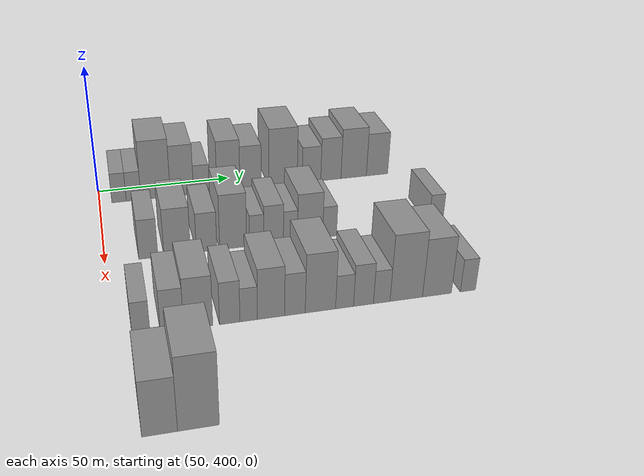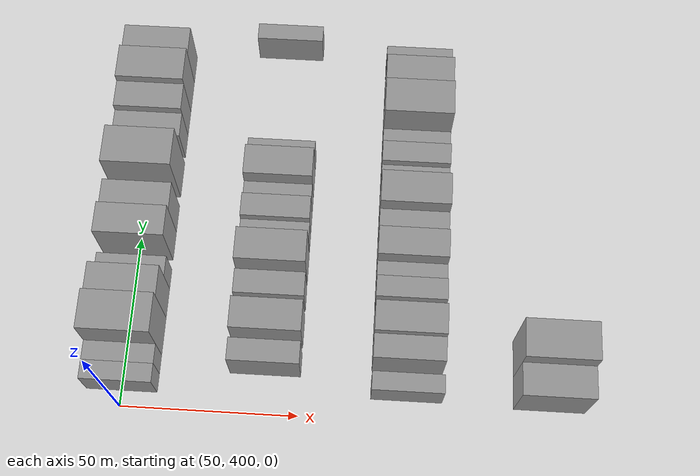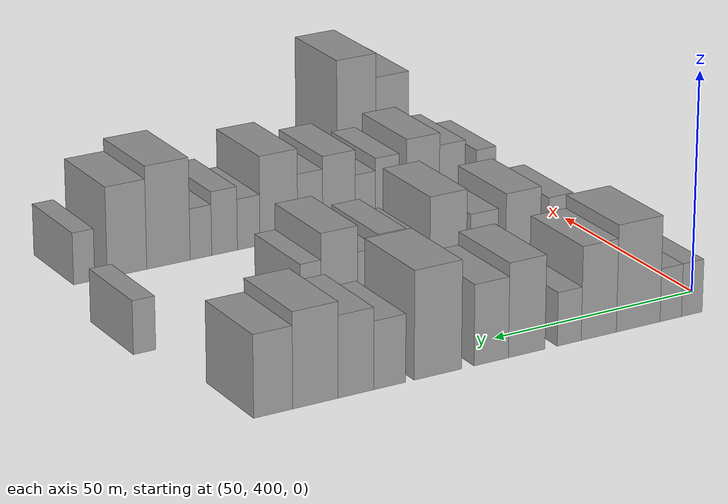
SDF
<sdf version="1.6">
 <world name="default">
  <model name="building_114">
   <static>1</static>
   <pose>50.0000 407.1340 0 0.000000 0.000000 0.000000</pose>
   <link name="link">
    <pose>0 0 6.00 0 0 0</pose>
    <collision name="collision"><geometry><box><size>20.0000 5.2944 12.0000</size></box></geometry></collision>
    <visual name="visual">
     <cast_shadows>0</cast_shadows>
     <geometry><box><size>20.0000 5.2944 12.0000</size></box></geometry>
     <material>
      <script>
       <uri>model://grey_wall/materials/scripts</uri>
       <uri>model://grey_wall/materials/textures</uri>
       <name>vrc/grey_wall</name>
      </script>
     </material>
    </visual>
   </link>
  </model>
  <model name="building_115">
   <static>1</static>
   <pose>50.0000 412.5193 0 0.000000 0.000000 0.000000</pose>
   <link name="link">
    <pose>0 0 6.00 0 0 0</pose>
    <collision name="collision"><geometry><box><size>20.0000 5.4762 12.0000</size></box></geometry></collision>
    <visual name="visual">
     <cast_shadows>0</cast_shadows>
     <geometry><box><size>20.0000 5.4762 12.0000</size></box></geometry>
     <material>
      <script>
       <uri>model://grey_wall/materials/scripts</uri>
       <uri>model://grey_wall/materials/textures</uri>
       <name>vrc/grey_wall</name>
      </script>
     </material>
    </visual>
   </link>
  </model>
  <model name="building_116">
   <static>1</static>
   <pose>50.0000 420.7711 0 0.000000 0.000000 0.000000</pose>
   <link name="link">
    <pose>0 0 12.00 0 0 0</pose>
    <collision name="collision"><geometry><box><size>20.0000 11.0274 24.0000</size></box></geometry></collision>
    <visual name="visual">
     <cast_shadows>0</cast_shadows>
     <geometry><box><size>20.0000 11.0274 24.0000</size></box></geometry>
     <material>
      <script>
       <uri>model://grey_wall/materials/scripts</uri>
       <uri>model://grey_wall/materials/textures</uri>
       <name>vrc/grey_wall</name>
      </script>
     </material>
    </visual>
   </link>
  </model>
  <model name="building_117">
   <static>1</static>
   <pose>50.0000 430.6638 0 0.000000 0.000000 0.000000</pose>
   <link name="link">
    <pose>0 0 10.50 0 0 0</pose>
    <collision name="collision"><geometry><box><size>20.0000 8.7579 21.0000</size></box></geometry></collision>
    <visual name="visual">
     <cast_shadows>0</cast_shadows>
     <geometry><box><size>20.0000 8.7579 21.0000</size></box></geometry>
     <material>
      <script>
       <uri>model://grey_wall/materials/scripts</uri>
       <uri>model://grey_wall/materials/textures</uri>
       <name>vrc/grey_wall</name>
      </script>
     </material>
    </visual>
   </link>
  </model>
  <model name="building_118">
   <static>1</static>
   <pose>50.0000 438.0082 0 0.000000 0.000000 0.000000</pose>
   <link name="link">
    <pose>0 0 6.00 0 0 0</pose>
    <collision name="collision"><geometry><box><size>20.0000 5.9310 12.0000</size></box></geometry></collision>
    <visual name="visual">
     <cast_shadows>0</cast_shadows>
     <geometry><box><size>20.0000 5.9310 12.0000</size></box></geometry>
     <material>
      <script>
       <uri>model://grey_wall/materials/scripts</uri>
       <uri>model://grey_wall/materials/textures</uri>
       <name>vrc/grey_wall</name>
      </script>
     </material>
    </visual>
   </link>
  </model>
  <model name="building_119">
   <static>1</static>
   <pose>50.0000 448.4330 0 0.000000 0.000000 0.000000</pose>
   <link name="link">
    <pose>0 0 10.50 0 0 0</pose>
    <collision name="collision"><geometry><box><size>20.0000 8.9185 21.0000</size></box></geometry></collision>
    <visual name="visual">
     <cast_shadows>0</cast_shadows>
     <geometry><box><size>20.0000 8.9185 21.0000</size></box></geometry>
     <material>
      <script>
       <uri>model://grey_wall/materials/scripts</uri>
       <uri>model://grey_wall/materials/textures</uri>
       <name>vrc/grey_wall</name>
      </script>
     </material>
    </visual>
   </link>
  </model>
  <model name="building_120">
   <static>1</static>
   <pose>50.0000 457.0442 0 0.000000 0.000000 0.000000</pose>
   <link name="link">
    <pose>0 0 9.00 0 0 0</pose>
    <collision name="collision"><geometry><box><size>20.0000 8.3039 18.0000</size></box></geometry></collision>
    <visual name="visual">
     <cast_shadows>0</cast_shadows>
     <geometry><box><size>20.0000 8.3039 18.0000</size></box></geometry>
     <material>
      <script>
       <uri>model://grey_wall/materials/scripts</uri>
       <uri>model://grey_wall/materials/textures</uri>
       <name>vrc/grey_wall</name>
      </script>
     </material>
    </visual>
   </link>
  </model>
  <model name="building_121">
   <static>1</static>
   <pose>50.0000 469.8124 0 0.000000 0.000000 0.000000</pose>
   <link name="link">
    <pose>0 0 12.00 0 0 0</pose>
    <collision name="collision"><geometry><box><size>20.0000 11.2325 24.0000</size></box></geometry></collision>
    <visual name="visual">
     <cast_shadows>0</cast_shadows>
     <geometry><box><size>20.0000 11.2325 24.0000</size></box></geometry>
     <material>
      <script>
       <uri>model://grey_wall/materials/scripts</uri>
       <uri>model://grey_wall/materials/textures</uri>
       <name>vrc/grey_wall</name>
      </script>
     </material>
    </visual>
   </link>
  </model>
  <model name="building_122">
   <static>1</static>
   <pose>50.0000 481.1685 0 0.000000 0.000000 0.000000</pose>
   <link name="link">
    <pose>0 0 7.50 0 0 0</pose>
    <collision name="collision"><geometry><box><size>20.0000 7.4798 15.0000</size></box></geometry></collision>
    <visual name="visual">
     <cast_shadows>0</cast_shadows>
     <geometry><box><size>20.0000 7.4798 15.0000</size></box></geometry>
     <material>
      <script>
       <uri>model://grey_wall/materials/scripts</uri>
       <uri>model://grey_wall/materials/textures</uri>
       <name>vrc/grey_wall</name>
      </script>
     </material>
    </visual>
   </link>
  </model>
  <model name="building_123">
   <static>1</static>
   <pose>50.0000 489.0172 0 0.000000 0.000000 0.000000</pose>
   <link name="link">
    <pose>0 0 9.00 0 0 0</pose>
    <collision name="collision"><geometry><box><size>20.0000 8.2176 18.0000</size></box></geometry></collision>
    <visual name="visual">
     <cast_shadows>0</cast_shadows>
     <geometry><box><size>20.0000 8.2176 18.0000</size></box></geometry>
     <material>
      <script>
       <uri>model://grey_wall/materials/scripts</uri>
       <uri>model://grey_wall/materials/textures</uri>
       <name>vrc/grey_wall</name>
      </script>
     </material>
    </visual>
   </link>
  </model>
  <model name="building_124">
   <static>1</static>
   <pose>50.0000 498.3271 0 0.000000 0.000000 0.000000</pose>
   <link name="link">
    <pose>0 0 10.50 0 0 0</pose>
    <collision name="collision"><geometry><box><size>20.0000 10.4022 21.0000</size></box></geometry></collision>
    <visual name="visual">
     <cast_shadows>0</cast_shadows>
     <geometry><box><size>20.0000 10.4022 21.0000</size></box></geometry>
     <material>
      <script>
       <uri>model://grey_wall/materials/scripts</uri>
       <uri>model://grey_wall/materials/textures</uri>
       <name>vrc/grey_wall</name>
      </script>
     </material>
    </visual>
   </link>
  </model>
  <model name="building_125">
   <static>1</static>
   <pose>50.0000 507.9501 0 0.000000 0.000000 0.000000</pose>
   <link name="link">
    <pose>0 0 9.00 0 0 0</pose>
    <collision name="collision"><geometry><box><size>20.0000 8.8437 18.0000</size></box></geometry></collision>
    <visual name="visual">
     <cast_shadows>0</cast_shadows>
     <geometry><box><size>20.0000 8.8437 18.0000</size></box></geometry>
     <material>
      <script>
       <uri>model://grey_wall/materials/scripts</uri>
       <uri>model://grey_wall/materials/textures</uri>
       <name>vrc/grey_wall</name>
      </script>
     </material>
    </visual>
   </link>
  </model>
  <model name="building_247">
   <static>1</static>
   <pose>90.0000 414.3589 0 0.000000 0.000000 0.000000</pose>
   <link name="link">
    <pose>0 0 7.50 0 0 0</pose>
    <collision name="collision"><geometry><box><size>20.0000 6.3774 15.0000</size></box></geometry></collision>
    <visual name="visual">
     <cast_shadows>0</cast_shadows>
     <geometry><box><size>20.0000 6.3774 15.0000</size></box></geometry>
     <material>
      <script>
       <uri>model://grey_wall/materials/scripts</uri>
       <uri>model://grey_wall/materials/textures</uri>
       <name>vrc/grey_wall</name>
      </script>
     </material>
    </visual>
   </link>
  </model>
  <model name="building_248">
   <static>1</static>
   <pose>90.0000 424.0070 0 0.000000 0.000000 0.000000</pose>
   <link name="link">
    <pose>0 0 9.00 0 0 0</pose>
    <collision name="collision"><geometry><box><size>20.0000 8.9189 18.0000</size></box></geometry></collision>
    <visual name="visual">
     <cast_shadows>0</cast_shadows>
     <geometry><box><size>20.0000 8.9189 18.0000</size></box></geometry>
     <material>
      <script>
       <uri>model://grey_wall/materials/scripts</uri>
       <uri>model://grey_wall/materials/textures</uri>
       <name>vrc/grey_wall</name>
      </script>
     </material>
    </visual>
   </link>
  </model>
  <model name="building_249">
   <static>1</static>
   <pose>90.0000 433.9471 0 0.000000 0.000000 0.000000</pose>
   <link name="link">
    <pose>0 0 7.50 0 0 0</pose>
    <collision name="collision"><geometry><box><size>20.0000 6.9612 15.0000</size></box></geometry></collision>
    <visual name="visual">
     <cast_shadows>0</cast_shadows>
     <geometry><box><size>20.0000 6.9612 15.0000</size></box></geometry>
     <material>
      <script>
       <uri>model://grey_wall/materials/scripts</uri>
       <uri>model://grey_wall/materials/textures</uri>
       <name>vrc/grey_wall</name>
      </script>
     </material>
    </visual>
   </link>
  </model>
  <model name="building_250">
   <static>1</static>
   <pose>90.0000 443.0434 0 0.000000 0.000000 0.000000</pose>
   <link name="link">
    <pose>0 0 10.50 0 0 0</pose>
    <collision name="collision"><geometry><box><size>20.0000 9.2316 21.0000</size></box></geometry></collision>
    <visual name="visual">
     <cast_shadows>0</cast_shadows>
     <geometry><box><size>20.0000 9.2316 21.0000</size></box></geometry>
     <material>
      <script>
       <uri>model://grey_wall/materials/scripts</uri>
       <uri>model://grey_wall/materials/textures</uri>
       <name>vrc/grey_wall</name>
      </script>
     </material>
    </visual>
   </link>
  </model>
  <model name="building_251">
   <static>1</static>
   <pose>90.0000 451.1419 0 0.000000 0.000000 0.000000</pose>
   <link name="link">
    <pose>0 0 6.00 0 0 0</pose>
    <collision name="collision"><geometry><box><size>20.0000 4.9653 12.0000</size></box></geometry></collision>
    <visual name="visual">
     <cast_shadows>0</cast_shadows>
     <geometry><box><size>20.0000 4.9653 12.0000</size></box></geometry>
     <material>
      <script>
       <uri>model://grey_wall/materials/scripts</uri>
       <uri>model://grey_wall/materials/textures</uri>
       <name>vrc/grey_wall</name>
      </script>
     </material>
    </visual>
   </link>
  </model>
  <model name="building_252">
   <static>1</static>
   <pose>90.0000 457.0753 0 0.000000 0.000000 0.000000</pose>
   <link name="link">
    <pose>0 0 7.50 0 0 0</pose>
    <collision name="collision"><geometry><box><size>20.0000 6.9015 15.0000</size></box></geometry></collision>
    <visual name="visual">
     <cast_shadows>0</cast_shadows>
     <geometry><box><size>20.0000 6.9015 15.0000</size></box></geometry>
     <material>
      <script>
       <uri>model://grey_wall/materials/scripts</uri>
       <uri>model://grey_wall/materials/textures</uri>
       <name>vrc/grey_wall</name>
      </script>
     </material>
    </visual>
   </link>
  </model>
  <model name="building_253">
   <static>1</static>
   <pose>90.0000 463.0140 0 0.000000 0.000000 0.000000</pose>
   <link name="link">
    <pose>0 0 6.00 0 0 0</pose>
    <collision name="collision"><geometry><box><size>20.0000 4.9760 12.0000</size></box></geometry></collision>
    <visual name="visual">
     <cast_shadows>0</cast_shadows>
     <geometry><box><size>20.0000 4.9760 12.0000</size></box></geometry>
     <material>
      <script>
       <uri>model://grey_wall/materials/scripts</uri>
       <uri>model://grey_wall/materials/textures</uri>
       <name>vrc/grey_wall</name>
      </script>
     </material>
    </visual>
   </link>
  </model>
  <model name="building_254">
   <static>1</static>
   <pose>90.0000 469.9981 0 0.000000 0.000000 0.000000</pose>
   <link name="link">
    <pose>0 0 9.00 0 0 0</pose>
    <collision name="collision"><geometry><box><size>20.0000 8.9920 18.0000</size></box></geometry></collision>
    <visual name="visual">
     <cast_shadows>0</cast_shadows>
     <geometry><box><size>20.0000 8.9920 18.0000</size></box></geometry>
     <material>
      <script>
       <uri>model://grey_wall/materials/scripts</uri>
       <uri>model://grey_wall/materials/textures</uri>
       <name>vrc/grey_wall</name>
      </script>
     </material>
    </visual>
   </link>
  </model>
  <model name="building_255">
   <static>1</static>
   <pose>90.0000 476.9876 0 0.000000 0.000000 0.000000</pose>
   <link name="link">
    <pose>0 0 6.00 0 0 0</pose>
    <collision name="collision"><geometry><box><size>20.0000 4.9871 12.0000</size></box></geometry></collision>
    <visual name="visual">
     <cast_shadows>0</cast_shadows>
     <geometry><box><size>20.0000 4.9871 12.0000</size></box></geometry>
     <material>
      <script>
       <uri>model://grey_wall/materials/scripts</uri>
       <uri>model://grey_wall/materials/textures</uri>
       <name>vrc/grey_wall</name>
      </script>
     </material>
    </visual>
   </link>
  </model>
  <model name="building_256">
   <static>1</static>
   <pose>90.0000 516.2342 0 0.000000 0.000000 0.000000</pose>
   <link name="link">
    <pose>0 0 6.00 0 0 0</pose>
    <collision name="collision"><geometry><box><size>20.0000 5.1687 12.0000</size></box></geometry></collision>
    <visual name="visual">
     <cast_shadows>0</cast_shadows>
     <geometry><box><size>20.0000 5.1687 12.0000</size></box></geometry>
     <material>
      <script>
       <uri>model://grey_wall/materials/scripts</uri>
       <uri>model://grey_wall/materials/textures</uri>
       <name>vrc/grey_wall</name>
      </script>
     </material>
    </visual>
   </link>
  </model>
  <model name="building_387">
   <static>1</static>
   <pose>130.0000 408.5924 0 0.000000 0.000000 0.000000</pose>
   <link name="link">
    <pose>0 0 6.00 0 0 0</pose>
    <collision name="collision"><geometry><box><size>20.0000 5.2448 12.0000</size></box></geometry></collision>
    <visual name="visual">
     <cast_shadows>0</cast_shadows>
     <geometry><box><size>20.0000 5.2448 12.0000</size></box></geometry>
     <material>
      <script>
       <uri>model://grey_wall/materials/scripts</uri>
       <uri>model://grey_wall/materials/textures</uri>
       <name>vrc/grey_wall</name>
      </script>
     </material>
    </visual>
   </link>
  </model>
  <model name="building_388">
   <static>1</static>
   <pose>130.0000 417.6272 0 0.000000 0.000000 0.000000</pose>
   <link name="link">
    <pose>0 0 7.50 0 0 0</pose>
    <collision name="collision"><geometry><box><size>20.0000 6.8248 15.0000</size></box></geometry></collision>
    <visual name="visual">
     <cast_shadows>0</cast_shadows>
     <geometry><box><size>20.0000 6.8248 15.0000</size></box></geometry>
     <material>
      <script>
       <uri>model://grey_wall/materials/scripts</uri>
       <uri>model://grey_wall/materials/textures</uri>
       <name>vrc/grey_wall</name>
      </script>
     </material>
    </visual>
   </link>
  </model>
  <model name="building_389">
   <static>1</static>
   <pose>130.0000 425.3626 0 0.000000 0.000000 0.000000</pose>
   <link name="link">
    <pose>0 0 9.00 0 0 0</pose>
    <collision name="collision"><geometry><box><size>20.0000 8.6460 18.0000</size></box></geometry></collision>
    <visual name="visual">
     <cast_shadows>0</cast_shadows>
     <geometry><box><size>20.0000 8.6460 18.0000</size></box></geometry>
     <material>
      <script>
       <uri>model://grey_wall/materials/scripts</uri>
       <uri>model://grey_wall/materials/textures</uri>
       <name>vrc/grey_wall</name>
      </script>
     </material>
    </visual>
   </link>
  </model>
  <model name="building_390">
   <static>1</static>
   <pose>130.0000 434.7614 0 0.000000 0.000000 0.000000</pose>
   <link name="link">
    <pose>0 0 7.50 0 0 0</pose>
    <collision name="collision"><geometry><box><size>20.0000 6.1516 15.0000</size></box></geometry></collision>
    <visual name="visual">
     <cast_shadows>0</cast_shadows>
     <geometry><box><size>20.0000 6.1516 15.0000</size></box></geometry>
     <material>
      <script>
       <uri>model://grey_wall/materials/scripts</uri>
       <uri>model://grey_wall/materials/textures</uri>
       <name>vrc/grey_wall</name>
      </script>
     </material>
    </visual>
   </link>
  </model>
  <model name="building_391">
   <static>1</static>
   <pose>130.0000 440.4829 0 0.000000 0.000000 0.000000</pose>
   <link name="link">
    <pose>0 0 6.00 0 0 0</pose>
    <collision name="collision"><geometry><box><size>20.0000 5.2915 12.0000</size></box></geometry></collision>
    <visual name="visual">
     <cast_shadows>0</cast_shadows>
     <geometry><box><size>20.0000 5.2915 12.0000</size></box></geometry>
     <material>
      <script>
       <uri>model://grey_wall/materials/scripts</uri>
       <uri>model://grey_wall/materials/textures</uri>
       <name>vrc/grey_wall</name>
      </script>
     </material>
    </visual>
   </link>
  </model>
  <model name="building_392">
   <static>1</static>
   <pose>130.0000 447.2966 0 0.000000 0.000000 0.000000</pose>
   <link name="link">
    <pose>0 0 9.00 0 0 0</pose>
    <collision name="collision"><geometry><box><size>20.0000 8.3359 18.0000</size></box></geometry></collision>
    <visual name="visual">
     <cast_shadows>0</cast_shadows>
     <geometry><box><size>20.0000 8.3359 18.0000</size></box></geometry>
     <material>
      <script>
       <uri>model://grey_wall/materials/scripts</uri>
       <uri>model://grey_wall/materials/textures</uri>
       <name>vrc/grey_wall</name>
      </script>
     </material>
    </visual>
   </link>
  </model>
  <model name="building_393">
   <static>1</static>
   <pose>130.0000 454.6683 0 0.000000 0.000000 0.000000</pose>
   <link name="link">
    <pose>0 0 7.50 0 0 0</pose>
    <collision name="collision"><geometry><box><size>20.0000 6.4075 15.0000</size></box></geometry></collision>
    <visual name="visual">
     <cast_shadows>0</cast_shadows>
     <geometry><box><size>20.0000 6.4075 15.0000</size></box></geometry>
     <material>
      <script>
       <uri>model://grey_wall/materials/scripts</uri>
       <uri>model://grey_wall/materials/textures</uri>
       <name>vrc/grey_wall</name>
      </script>
     </material>
    </visual>
   </link>
  </model>
  <model name="building_394">
   <static>1</static>
   <pose>130.0000 462.6368 0 0.000000 0.000000 0.000000</pose>
   <link name="link">
    <pose>0 0 10.50 0 0 0</pose>
    <collision name="collision"><geometry><box><size>20.0000 9.5294 21.0000</size></box></geometry></collision>
    <visual name="visual">
     <cast_shadows>0</cast_shadows>
     <geometry><box><size>20.0000 9.5294 21.0000</size></box></geometry>
     <material>
      <script>
       <uri>model://grey_wall/materials/scripts</uri>
       <uri>model://grey_wall/materials/textures</uri>
       <name>vrc/grey_wall</name>
      </script>
     </material>
    </visual>
   </link>
  </model>
  <model name="building_395">
   <static>1</static>
   <pose>130.0000 470.2453 0 0.000000 0.000000 0.000000</pose>
   <link name="link">
    <pose>0 0 6.00 0 0 0</pose>
    <collision name="collision"><geometry><box><size>20.0000 5.6877 12.0000</size></box></geometry></collision>
    <visual name="visual">
     <cast_shadows>0</cast_shadows>
     <geometry><box><size>20.0000 5.6877 12.0000</size></box></geometry>
     <material>
      <script>
       <uri>model://grey_wall/materials/scripts</uri>
       <uri>model://grey_wall/materials/textures</uri>
       <name>vrc/grey_wall</name>
      </script>
     </material>
    </visual>
   </link>
  </model>
  <model name="building_396">
   <static>1</static>
   <pose>130.0000 476.2890 0 0.000000 0.000000 0.000000</pose>
   <link name="link">
    <pose>0 0 7.50 0 0 0</pose>
    <collision name="collision"><geometry><box><size>20.0000 6.3997 15.0000</size></box></geometry></collision>
    <visual name="visual">
     <cast_shadows>0</cast_shadows>
     <geometry><box><size>20.0000 6.3997 15.0000</size></box></geometry>
     <material>
      <script>
       <uri>model://grey_wall/materials/scripts</uri>
       <uri>model://grey_wall/materials/textures</uri>
       <name>vrc/grey_wall</name>
      </script>
     </material>
    </visual>
   </link>
  </model>
  <model name="building_397">
   <static>1</static>
   <pose>130.0000 482.1592 0 0.000000 0.000000 0.000000</pose>
   <link name="link">
    <pose>0 0 6.00 0 0 0</pose>
    <collision name="collision"><geometry><box><size>20.0000 5.3406 12.0000</size></box></geometry></collision>
    <visual name="visual">
     <cast_shadows>0</cast_shadows>
     <geometry><box><size>20.0000 5.3406 12.0000</size></box></geometry>
     <material>
      <script>
       <uri>model://grey_wall/materials/scripts</uri>
       <uri>model://grey_wall/materials/textures</uri>
       <name>vrc/grey_wall</name>
      </script>
     </material>
    </visual>
   </link>
  </model>
  <model name="building_398">
   <static>1</static>
   <pose>130.0000 490.1432 0 0.000000 0.000000 0.000000</pose>
   <link name="link">
    <pose>0 0 12.00 0 0 0</pose>
    <collision name="collision"><geometry><box><size>20.0000 10.6273 24.0000</size></box></geometry></collision>
    <visual name="visual">
     <cast_shadows>0</cast_shadows>
     <geometry><box><size>20.0000 10.6273 24.0000</size></box></geometry>
     <material>
      <script>
       <uri>model://grey_wall/materials/scripts</uri>
       <uri>model://grey_wall/materials/textures</uri>
       <name>vrc/grey_wall</name>
      </script>
     </material>
    </visual>
   </link>
  </model>
  <model name="building_399">
   <static>1</static>
   <pose>130.0000 500.2467 0 0.000000 0.000000 0.000000</pose>
   <link name="link">
    <pose>0 0 10.50 0 0 0</pose>
    <collision name="collision"><geometry><box><size>20.0000 9.5798 21.0000</size></box></geometry></collision>
    <visual name="visual">
     <cast_shadows>0</cast_shadows>
     <geometry><box><size>20.0000 9.5798 21.0000</size></box></geometry>
     <material>
      <script>
       <uri>model://grey_wall/materials/scripts</uri>
       <uri>model://grey_wall/materials/textures</uri>
       <name>vrc/grey_wall</name>
      </script>
     </material>
    </visual>
   </link>
  </model>
  <model name="building_400">
   <static>1</static>
   <pose>130.0000 510.5665 0 0.000000 0.000000 0.000000</pose>
   <link name="link">
    <pose>0 0 6.00 0 0 0</pose>
    <collision name="collision"><geometry><box><size>20.0000 5.0598 12.0000</size></box></geometry></collision>
    <visual name="visual">
     <cast_shadows>0</cast_shadows>
     <geometry><box><size>20.0000 5.0598 12.0000</size></box></geometry>
     <material>
      <script>
       <uri>model://grey_wall/materials/scripts</uri>
       <uri>model://grey_wall/materials/textures</uri>
       <name>vrc/grey_wall</name>
      </script>
     </material>
    </visual>
   </link>
  </model>
  <model name="building_519">
   <static>1</static>
   <pose>170.0000 409.8722 0 0.000000 0.000000 0.000000</pose>
   <link name="link">
    <pose>0 0 9.00 0 0 0</pose>
    <collision name="collision"><geometry><box><size>20.0000 8.9986 18.0000</size></box></geometry></collision>
    <visual name="visual">
     <cast_shadows>0</cast_shadows>
     <geometry><box><size>20.0000 8.9986 18.0000</size></box></geometry>
     <material>
      <script>
       <uri>model://grey_wall/materials/scripts</uri>
       <uri>model://grey_wall/materials/textures</uri>
       <name>vrc/grey_wall</name>
      </script>
     </material>
    </visual>
   </link>
  </model>
  <model name="building_520">
   <static>1</static>
   <pose>170.0000 419.6890 0 0.000000 0.000000 0.000000</pose>
   <link name="link">
    <pose>0 0 12.00 0 0 0</pose>
    <collision name="collision"><geometry><box><size>20.0000 10.6349 24.0000</size></box></geometry></collision>
    <visual name="visual">
     <cast_shadows>0</cast_shadows>
     <geometry><box><size>20.0000 10.6349 24.0000</size></box></geometry>
     <material>
      <script>
       <uri>model://grey_wall/materials/scripts</uri>
       <uri>model://grey_wall/materials/textures</uri>
       <name>vrc/grey_wall</name>
      </script>
     </material>
    </visual>
   </link>
  </model>
 </world>
</sdf>
